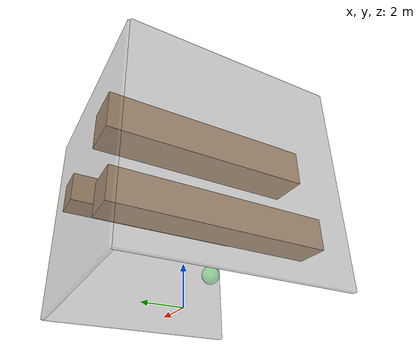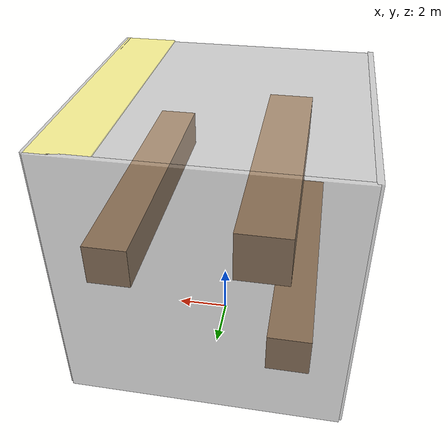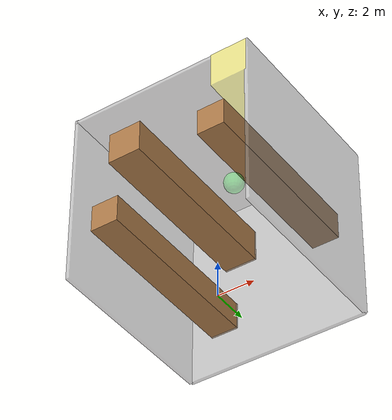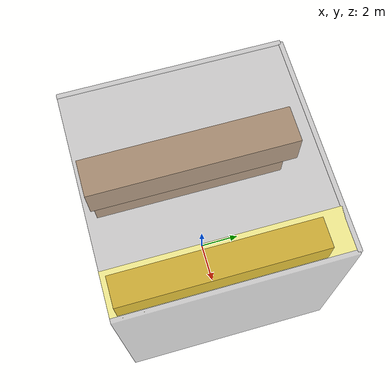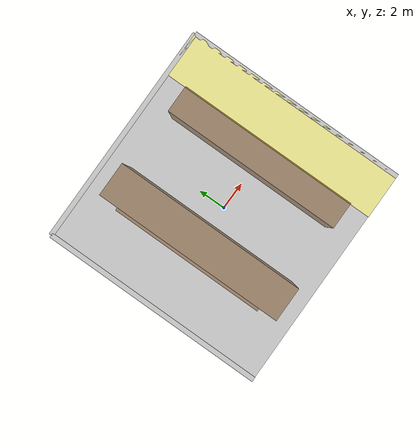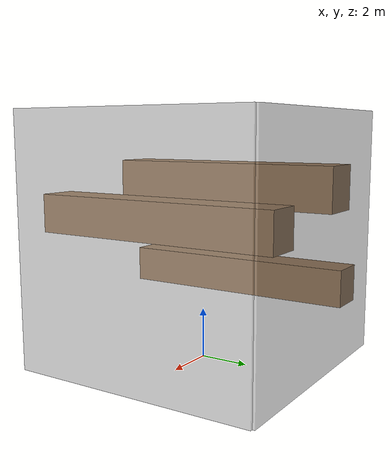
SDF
<?xml version='1.0'?>
<sdf version='1.5'>
  <model name='air_space'>
    <pose frame=''>0 0 0 0 -0 0</pose>

    <link name='wall_0'>
        <pose frame=''>-5.0 0.0 5.0 0 -0 1.570796</pose>
        <collision name='collision'>
          <geometry>
            <box>
              <size>10 0.2 10.0</size>
            </box>
          </geometry>
          <max_contacts>10</max_contacts>
          <surface>
            <contact>
              <ode/>
            </contact>
            <bounce/>
            <friction>
              <torsional>
                <ode/>
              </torsional>
              <ode/>
            </friction>
          </surface>
        </collision>
        <visual name='visual'>
          <cast_shadows>0</cast_shadows>
          <transparency>0.5</transparency>
          <geometry>
            <box>
              <size>10 0.2 10.0</size>
            </box>
          </geometry>
          <material>
            <script>
            <name>Gazebo/GreyTransparent</name>
            <uri>file://media/materials/scripts/gazebo.material</uri>
            </script>
            <ambient>1 1 1 1</ambient>
          </material>
        </visual>
        <self_collide>0</self_collide>
        <enable_wind>0</enable_wind>
        <kinematic>0</kinematic>
      </link>

      <link name='wall_1'>
        <pose frame=''>5.0 0.0 5.0 0 -0 -1.570796</pose>
        <collision name='collision'>
          <geometry>
            <box>
              <size>10 0.2 10.0</size>
            </box>
          </geometry>
          <max_contacts>10</max_contacts>
          <surface>
            <contact>
              <ode/>
            </contact>
            <bounce/>
            <friction>
              <torsional>
                <ode/>
              </torsional>
              <ode/>
            </friction>
          </surface>
        </collision>
        <visual name='visual'>
          <cast_shadows>0</cast_shadows>
          <transparency>0.5</transparency>
          <geometry>
            <box>
              <size>10 0.2 10.0</size>
            </box>
          </geometry>
          <material>
            <script>
            <name>Gazebo/GreyTransparent</name>
            <uri>file://media/materials/scripts/gazebo.material</uri>

            </script>
            <ambient>1 1 1 1</ambient>
          </material>
        </visual>
        <self_collide>0</self_collide>
        <enable_wind>0</enable_wind>
        <kinematic>0</kinematic>
      </link>

      <link name='wall_2'>
        <pose frame=''>0 0.0 9.85 1.570796 -0 -0</pose>
        <collision name='collision'>
          <geometry>
            <box>
              <size>10 0.2 10.0</size>
            </box>
          </geometry>
          <max_contacts>10</max_contacts>
          <surface>
            <contact>
              <ode/>
            </contact>
            <bounce/>
            <friction>
              <torsional>
                <ode/>
              </torsional>
              <ode/>
            </friction>
          </surface>
        </collision>
        <visual name='visual'>
          <cast_shadows>0</cast_shadows>
          <transparency>0.5</transparency>
          <geometry>
            <box>
              <size>10 0.2 10.0</size>
            </box>
          </geometry>
          <material>
            <script>
            <name>Gazebo/GreyTransparent</name>
            <uri>file://media/materials/scripts/gazebo.material</uri>

            </script>
            <ambient>1 1 1 1</ambient>
          </material>
        </visual>
        <self_collide>0</self_collide>
        <enable_wind>0</enable_wind>
        <kinematic>0</kinematic>
      </link>

      <link name='wall_3'>
        <pose frame=''>-0 5.0 5.0 0 -0 0</pose>
        <collision name='collision'>
          <geometry>
            <box>
              <size>10 0.2 10.0</size>
            </box>
          </geometry>
          <max_contacts>10</max_contacts>
          <surface>
            <contact>
              <ode/>
            </contact>
            <bounce/>
            <friction>
              <torsional>
                <ode/>
              </torsional>
              <ode/>
            </friction>
          </surface>
        </collision>
        <visual name='visual'>
          <cast_shadows>0</cast_shadows>
          <transparency>0.5</transparency>
          <geometry>
            <box>
              <size>10 0.2 10.0</size>
            </box>
          </geometry>
          <material>
            <script>
            <uri>file://media/materials/scripts/gazebo.material</uri>
            <name>Gazebo/Grey</name>
            </script>
            <ambient>1 1 1 1</ambient>
          </material>
        </visual>
        <self_collide>0</self_collide>
        <enable_wind>0</enable_wind>
        <kinematic>0</kinematic>
      </link>

     <link name='cube_4'>
        <pose frame=''>-3 0 3.0 0 -0 0</pose>
        <collision name='collision'>
          <geometry>
            <box>
              <size>1.5 10 1.5</size>
            </box>
          </geometry>
          <max_contacts>10</max_contacts>
          <surface>
            <contact>
              <ode/>
            </contact>
            <bounce/>
            <friction>
              <torsional>
                <ode/>
              </torsional>
              <ode/>
            </friction>
          </surface>
        </collision>
        <visual name='visual'>
        <cast_shadows>0</cast_shadows>
          <geometry>
            <box>
              <size>1.5 10 1.5</size>
            </box>
          </geometry>
          <material>
            <script>
              <uri>file://media/materials/scripts/gazebo.material</uri>
              <name>Gazebo/Wood</name>
            </script>
          </material>
        </visual>
        <self_collide>0</self_collide>
        <enable_wind>0</enable_wind>
        <kinematic>0</kinematic>
     </link>
    <link name='cube_bigger'>
        <pose frame=''>-2.0 0 7.0 0 -0 0</pose>
        <collision name='collision'>
          <geometry>
            <box>
              <size>1.8 10 1.8</size>
            </box>
          </geometry>
          <max_contacts>10</max_contacts>
          <surface>
            <contact>
              <ode/>
            </contact>
            <bounce/>
            <friction>
              <torsional>
                <ode/>
              </torsional>
              <ode/>
            </friction>
          </surface>
        </collision>
        <visual name='visual'>
        <cast_shadows>0</cast_shadows>
          <geometry>
            <box>
              <size>1.8 10 1.8</size>
            </box>
          </geometry>
          <material>
            <script>
              <uri>file://media/materials/scripts/gazebo.material</uri>
              <name>Gazebo/Wood</name>
            </script>
          </material>
        </visual>
        <self_collide>0</self_collide>
        <enable_wind>0</enable_wind>
        <kinematic>0</kinematic>
     </link>
    <link name='cube_big'>
        <pose frame=''>3.0 0 6.0 0 -0 0</pose>
        <collision name='collision'>
          <geometry>
            <box>
              <size>1.5 10 1.5</size>
            </box>
          </geometry>
          <max_contacts>10</max_contacts>
          <surface>
            <contact>
              <ode/>
            </contact>
            <bounce/>
            <friction>
              <torsional>
                <ode/>
              </torsional>
              <ode/>
            </friction>
          </surface>
        </collision>
        <visual name='visual'>
        <cast_shadows>0</cast_shadows>
          <geometry>
            <box>
              <size>1.5 10 1.5</size>
            </box>
          </geometry>
          <material>
            <script>
              <uri>file://media/materials/scripts/gazebo.material</uri>
              <name>Gazebo/Wood</name>
            </script>
          </material>
        </visual>
        <self_collide>0</self_collide>
        <enable_wind>0</enable_wind>
        <kinematic>0</kinematic>
     </link>

      <link name='target'>
        <pose frame=''>4. 0.0 9. 0 -0 0</pose>
        <visual name='visual'>
        <transparency>0.5</transparency>
          <geometry>
             <box>
              <size>2 10 2</size>
            </box>
          </geometry>
          <material>
            <script>
              <uri>file://media/materials/scripts/gazebo.material</uri>
              <name>Gazebo/YellowTransparent</name>
            </script>
            <ambient>1 1 1 1</ambient>
          </material>
          <cast_shadows>0</cast_shadows>
          <transparency>0</transparency>
        </visual>
        <self_collide>0</self_collide>
        <enable_wind>0</enable_wind>
        <kinematic>0</kinematic>
      </link>

      <link name='start'>
        <pose frame=''>3.182320 -3.339730 3. 0 -0 0</pose>
        <visual name='visual'>
        <transparency>0.5</transparency>
          <geometry>
            <sphere>
             <radius>.5</radius>
             </sphere>
          </geometry>
          <material>
            <script>
              <uri>file://media/materials/scripts/gazebo.material</uri>
              <name>Gazebo/GreenTransparent</name>
            </script>
            <ambient>1 1 1 1</ambient>
          </material>
          <cast_shadows>0</cast_shadows>
          <transparency>0</transparency>
        </visual>
        <self_collide>0</self_collide>
        <enable_wind>0</enable_wind>
        <kinematic>0</kinematic>
      </link>

    <static>1</static>
  </model>
</sdf>
